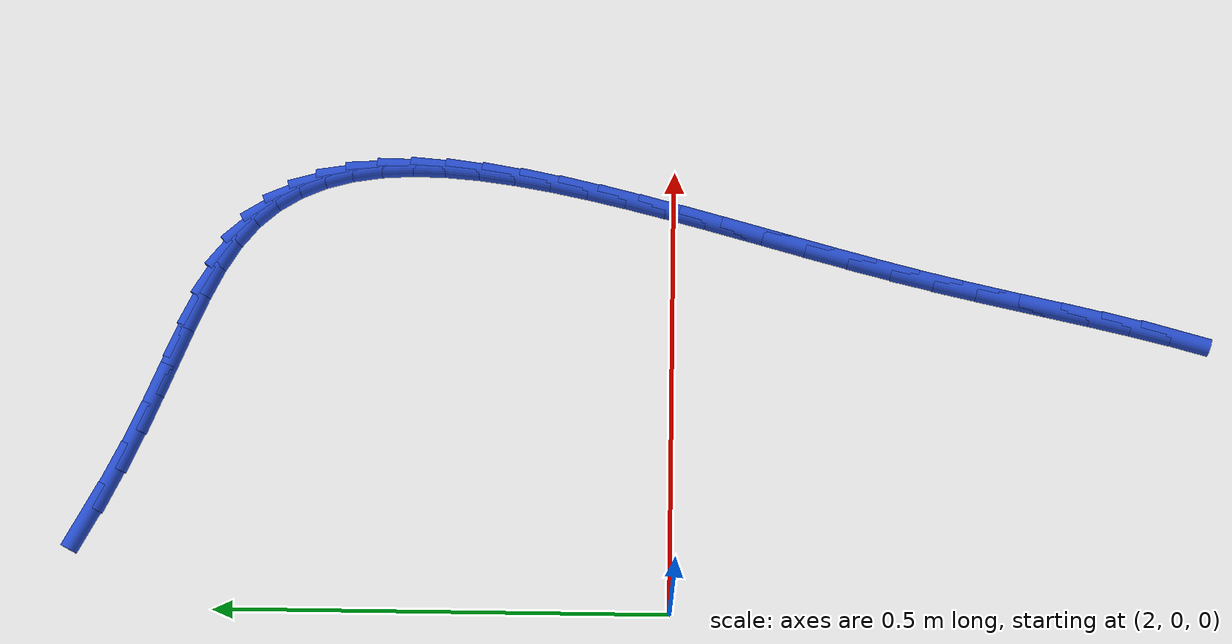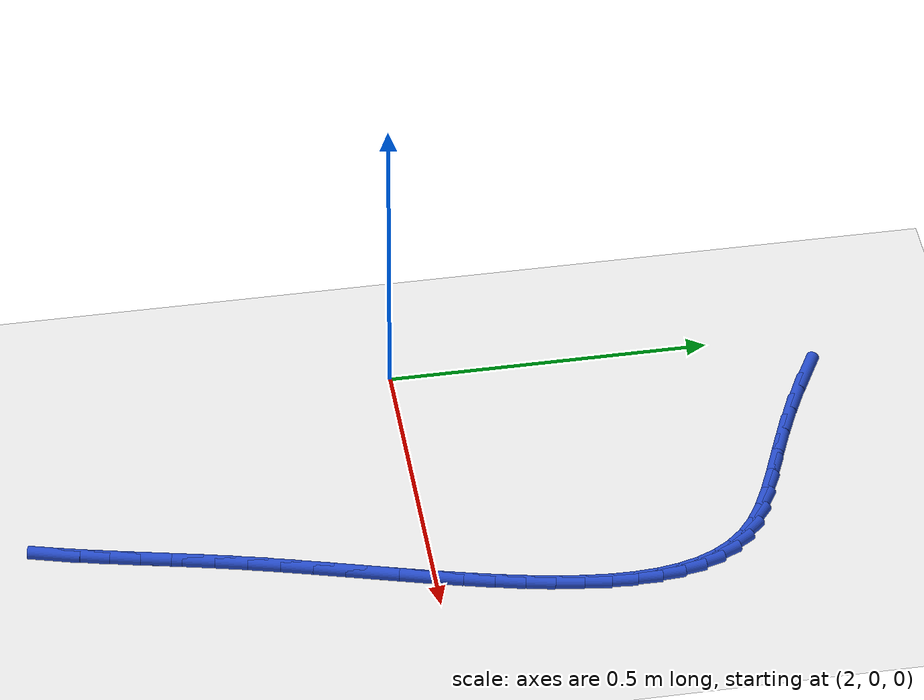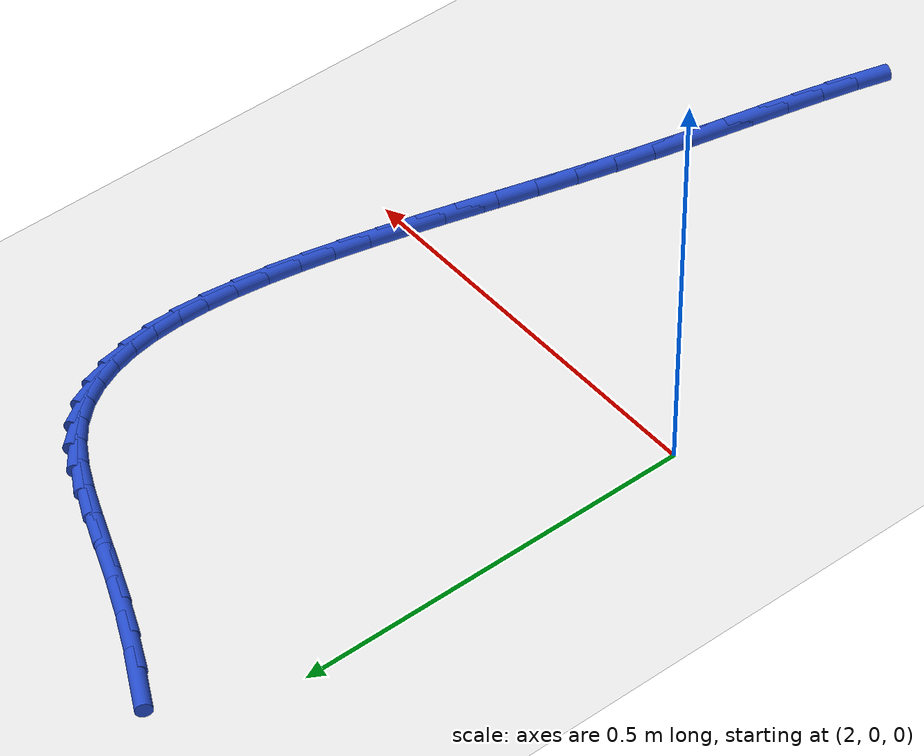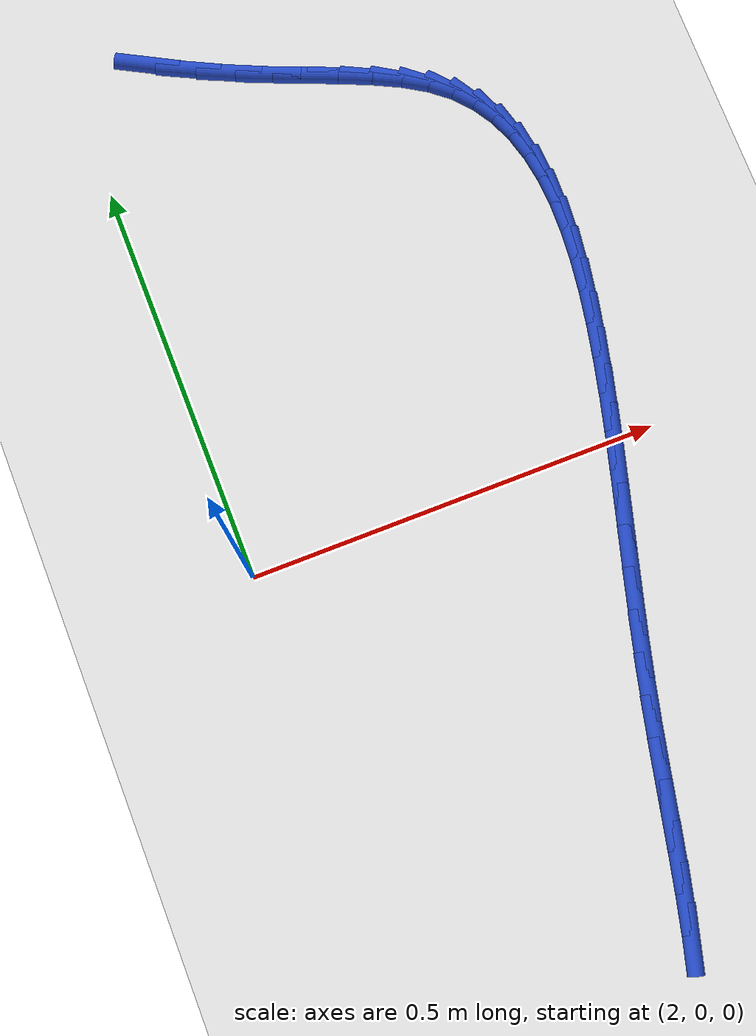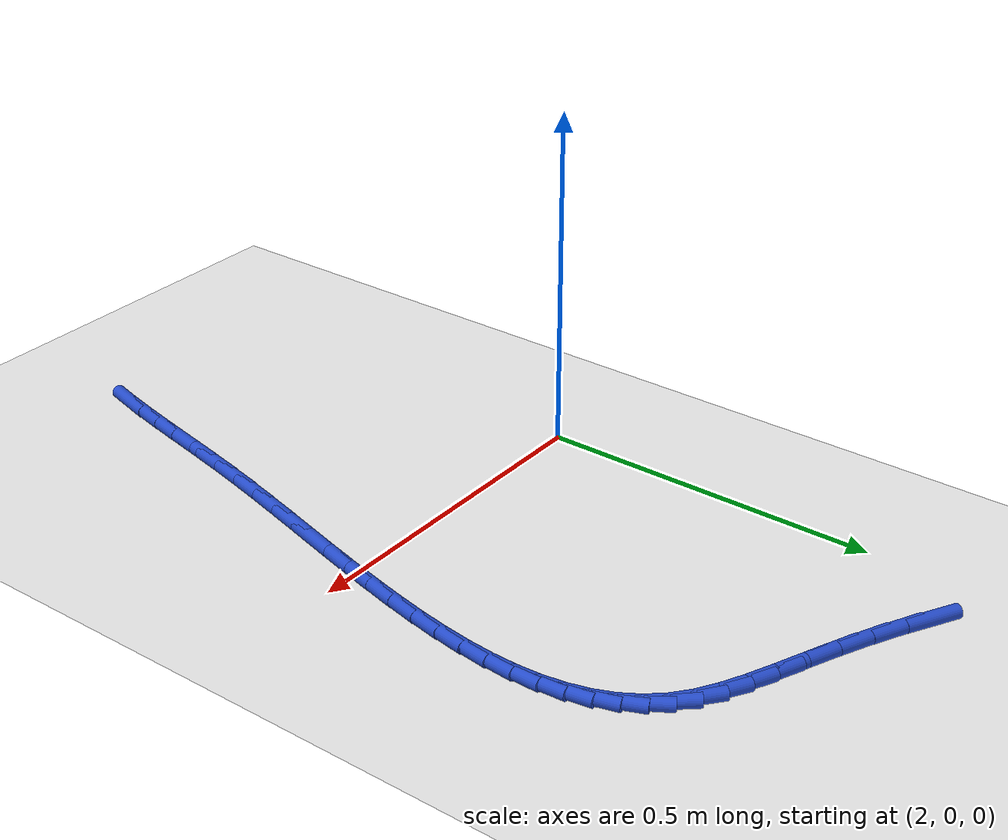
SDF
<sdf version="1.6">
 <world name="default">
  <model name="ground_plane">
   <static>1</static>
   <link name="link">
    <collision name="collision">
     <geometry><plane><normal>0 0 1</normal><size>100 100</size></plane></geometry>
     <surface><friction><ode><mu>100</mu><mu2>50</mu2></ode></friction></surface>
    </collision>
    <visual name="visual">
     <cast_shadows>0</cast_shadows>
     <geometry><plane><normal>0 0 1</normal><size>100 100</size></plane></geometry>
     <material>
      <script><uri>file://media/materials/scripts/gazebo.material</uri><name>Gazebo/WhiteGlow</name></script>
     </material>
    </visual>
   </link>
  </model>
  <model name="line">
   <link name="link_90">
    <pose>2.0980992528388556 0.6399209841957818 0.01 0 1.57 -0.4924733484986531</pose>
    <collision name="collision">
     <geometry><cylinder><radius>0.01</radius><length>0.08</length></cylinder></geometry>
    </collision>
    <visual name="visual">
     <material>
      <script><name>Gazebo/Blue</name><uri>file://media/materials/scripts/gazebo.material</uri></script>
     </material>
     <geometry><cylinder><radius>0.01</radius><length>0.08</length></cylinder></geometry>
    </visual>
   </link>
   <link name="link_91">
    <pose>2.143169569661212 0.6157376325426722 0.01 0 1.57 -0.4526784119201193</pose>
    <collision name="collision">
     <geometry><cylinder><radius>0.01</radius><length>0.08</length></cylinder></geometry>
    </collision>
    <visual name="visual">
     <material>
      <script><name>Gazebo/Blue</name><uri>file://media/materials/scripts/gazebo.material</uri></script>
     </material>
     <geometry><cylinder><radius>0.01</radius><length>0.08</length></cylinder></geometry>
    </visual>
   </link>
   <link name="link_92">
    <pose>2.188106141222339 0.5938821579544007 0.01 0 1.57 -0.4155878819843583</pose>
    <collision name="collision">
     <geometry><cylinder><radius>0.01</radius><length>0.08</length></cylinder></geometry>
    </collision>
    <visual name="visual">
     <material>
      <script><name>Gazebo/Blue</name><uri>file://media/materials/scripts/gazebo.material</uri></script>
     </material>
     <geometry><cylinder><radius>0.01</radius><length>0.08</length></cylinder></geometry>
    </visual>
   </link>
   <link name="link_93">
    <pose>2.2318185202130976 0.5745922826722613 0.01 0 1.57 -0.3892054873820127</pose>
    <collision name="collision">
     <geometry><cylinder><radius>0.01</radius><length>0.08</length></cylinder></geometry>
    </collision>
    <visual name="visual">
     <material>
      <script><name>Gazebo/Blue</name><uri>file://media/materials/scripts/gazebo.material</uri></script>
     </material>
     <geometry><cylinder><radius>0.01</radius><length>0.08</length></cylinder></geometry>
    </visual>
   </link>
   <link name="link_94">
    <pose>2.2735480842146156 0.5574778843181242 0.01 0 1.57 -0.3838199464590459</pose>
    <collision name="collision">
     <geometry><cylinder><radius>0.01</radius><length>0.08</length></cylinder></geometry>
    </collision>
    <visual name="visual">
     <material>
      <script><name>Gazebo/Blue</name><uri>file://media/materials/scripts/gazebo.material</uri></script>
     </material>
     <geometry><cylinder><radius>0.01</radius><length>0.08</length></cylinder></geometry>
    </visual>
   </link>
   <link name="link_95">
    <pose>2.3128159133128174 0.5416196164627842 0.01 0 1.57 -0.40408932229018085</pose>
    <collision name="collision">
     <geometry><cylinder><radius>0.01</radius><length>0.08</length></cylinder></geometry>
    </collision>
    <visual name="visual">
     <material>
      <script><name>Gazebo/Blue</name><uri>file://media/materials/scripts/gazebo.material</uri></script>
     </material>
     <geometry><cylinder><radius>0.01</radius><length>0.08</length></cylinder></geometry>
    </visual>
   </link>
   <link name="link_96">
    <pose>2.349151835774812 0.5260815802765144 0.01 0 1.57 -0.4560102694302764</pose>
    <collision name="collision">
     <geometry><cylinder><radius>0.01</radius><length>0.08</length></cylinder></geometry>
    </collision>
    <visual name="visual">
     <material>
      <script><name>Gazebo/Blue</name><uri>file://media/materials/scripts/gazebo.material</uri></script>
     </material>
     <geometry><cylinder><radius>0.01</radius><length>0.08</length></cylinder></geometry>
    </visual>
   </link>
   <link name="link_97">
    <pose>2.382085679867709 0.5099278769295876 0.01 0 1.57 -0.5471805058618263</pose>
    <collision name="collision">
     <geometry><cylinder><radius>0.01</radius><length>0.08</length></cylinder></geometry>
    </collision>
    <visual name="visual">
     <material>
      <script><name>Gazebo/Blue</name><uri>file://media/materials/scripts/gazebo.material</uri></script>
     </material>
     <geometry><cylinder><radius>0.01</radius><length>0.08</length></cylinder></geometry>
    </visual>
   </link>
   <link name="link_98">
    <pose>2.4111472738586155 0.49222260759227593 0.01 0 1.57 -0.6843754867167486</pose>
    <collision name="collision">
     <geometry><cylinder><radius>0.01</radius><length>0.08</length></cylinder></geometry>
    </collision>
    <visual name="visual">
     <material>
      <script><name>Gazebo/Blue</name><uri>file://media/materials/scripts/gazebo.material</uri></script>
     </material>
     <geometry><cylinder><radius>0.01</radius><length>0.08</length></cylinder></geometry>
    </visual>
   </link>
   <link name="link_99">
    <pose>2.435876884556389 0.4720451276523319 0.01 0 1.57 -0.8503345015030263</pose>
    <collision name="collision">
     <geometry><cylinder><radius>0.01</radius><length>0.08</length></cylinder></geometry>
    </collision>
    <visual name="visual">
     <material>
      <script><name>Gazebo/Blue</name><uri>file://media/materials/scripts/gazebo.material</uri></script>
     </material>
     <geometry><cylinder><radius>0.01</radius><length>0.08</length></cylinder></geometry>
    </visual>
   </link>
   <link name="link_100">
    <pose>2.4561451312508233 0.4489575484907604 0.01 0 1.57 -1.014942161393499</pose>
    <collision name="collision">
     <geometry><cylinder><radius>0.01</radius><length>0.08</length></cylinder></geometry>
    </collision>
    <visual name="visual">
     <material>
      <script><name>Gazebo/Blue</name><uri>file://media/materials/scripts/gazebo.material</uri></script>
     </material>
     <geometry><cylinder><radius>0.01</radius><length>0.08</length></cylinder></geometry>
    </visual>
   </link>
   <link name="link_101">
    <pose>2.472212609209553 0.4230918674479183 0.01 0 1.57 -1.167551977744427</pose>
    <collision name="collision">
     <geometry><cylinder><radius>0.01</radius><length>0.08</length></cylinder></geometry>
    </collision>
    <visual name="visual">
     <material>
      <script><name>Gazebo/Blue</name><uri>file://media/materials/scripts/gazebo.material</uri></script>
     </material>
     <geometry><cylinder><radius>0.01</radius><length>0.08</length></cylinder></geometry>
    </visual>
   </link>
   <link name="link_102">
    <pose>2.4843623799504715 0.39461291260582765 0.01 0 1.57 -1.3021268344948898</pose>
    <collision name="collision">
     <geometry><cylinder><radius>0.01</radius><length>0.08</length></cylinder></geometry>
    </collision>
    <visual name="visual">
     <material>
      <script><name>Gazebo/Blue</name><uri>file://media/materials/scripts/gazebo.material</uri></script>
     </material>
     <geometry><cylinder><radius>0.01</radius><length>0.08</length></cylinder></geometry>
    </visual>
   </link>
   <link name="link_103">
    <pose>2.492877504991474 0.3636855120465097 0.01 0 1.57 -1.4165545047317516</pose>
    <collision name="collision">
     <geometry><cylinder><radius>0.01</radius><length>0.08</length></cylinder></geometry>
    </collision>
    <visual name="visual">
     <material>
      <script><name>Gazebo/Blue</name><uri>file://media/materials/scripts/gazebo.material</uri></script>
     </material>
     <geometry><cylinder><radius>0.01</radius><length>0.08</length></cylinder></geometry>
    </visual>
   </link>
   <link name="link_104">
    <pose>2.4980410458504534 0.33047449385198574 0.01 0 1.57 -1.5115668012178949</pose>
    <collision name="collision">
     <geometry><cylinder><radius>0.01</radius><length>0.08</length></cylinder></geometry>
    </collision>
    <visual name="visual">
     <material>
      <script><name>Gazebo/Blue</name><uri>file://media/materials/scripts/gazebo.material</uri></script>
     </material>
     <geometry><cylinder><radius>0.01</radius><length>0.08</length></cylinder></geometry>
    </visual>
   </link>
   <link name="link_105">
    <pose>2.500136064045306 0.2951446861042771 0.01 0 1.57 1.5522798501714228</pose>
    <collision name="collision">
     <geometry><cylinder><radius>0.01</radius><length>0.08</length></cylinder></geometry>
    </collision>
    <visual name="visual">
     <material>
      <script><name>Gazebo/Blue</name><uri>file://media/materials/scripts/gazebo.material</uri></script>
     </material>
     <geometry><cylinder><radius>0.01</radius><length>0.08</length></cylinder></geometry>
    </visual>
   </link>
   <link name="link_106">
    <pose>2.499445621093924 0.2578609168854044 0.01 0 1.57 1.4892624724920558</pose>
    <collision name="collision">
     <geometry><cylinder><radius>0.01</radius><length>0.08</length></cylinder></geometry>
    </collision>
    <visual name="visual">
     <material>
      <script><name>Gazebo/Blue</name><uri>file://media/materials/scripts/gazebo.material</uri></script>
     </material>
     <geometry><cylinder><radius>0.01</radius><length>0.08</length></cylinder></geometry>
    </visual>
   </link>
   <link name="link_107">
    <pose>2.496252778514203 0.21878801427739084 0.01 0 1.57 1.4385855500745994</pose>
    <collision name="collision">
     <geometry><cylinder><radius>0.01</radius><length>0.08</length></cylinder></geometry>
    </collision>
    <visual name="visual">
     <material>
      <script><name>Gazebo/Blue</name><uri>file://media/materials/scripts/gazebo.material</uri></script>
     </material>
     <geometry><cylinder><radius>0.01</radius><length>0.08</length></cylinder></geometry>
    </visual>
   </link>
   <link name="link_108">
    <pose>2.490840597824038 0.17809080636225694 0.01 0 1.57 1.3982173462473546</pose>
    <collision name="collision">
     <geometry><cylinder><radius>0.01</radius><length>0.08</length></cylinder></geometry>
    </collision>
    <visual name="visual">
     <material>
      <script><name>Gazebo/Blue</name><uri>file://media/materials/scripts/gazebo.material</uri></script>
     </material>
     <geometry><cylinder><radius>0.01</radius><length>0.08</length></cylinder></geometry>
    </visual>
   </link>
   <link name="link_109">
    <pose>2.4834921405413217 0.13593412122202408 0.01 0 1.57 1.3665192398392874</pose>
    <collision name="collision">
     <geometry><cylinder><radius>0.01</radius><length>0.08</length></cylinder></geometry>
    </collision>
    <visual name="visual">
     <material>
      <script><name>Gazebo/Blue</name><uri>file://media/materials/scripts/gazebo.material</uri></script>
     </material>
     <geometry><cylinder><radius>0.01</radius><length>0.08</length></cylinder></geometry>
    </visual>
   </link>
   <link name="link_110">
    <pose>2.4744904681839497 0.0924827869387137 0.01 0 1.57 1.3422121138065894</pose>
    <collision name="collision">
     <geometry><cylinder><radius>0.01</radius><length>0.08</length></cylinder></geometry>
    </collision>
    <visual name="visual">
     <material>
      <script><name>Gazebo/Blue</name><uri>file://media/materials/scripts/gazebo.material</uri></script>
     </material>
     <geometry><cylinder><radius>0.01</radius><length>0.08</length></cylinder></geometry>
    </visual>
   </link>
   <link name="link_111">
    <pose>2.4641186422698156 0.04790163159434724 0.01 0 1.57 1.3243225282462223</pose>
    <collision name="collision">
     <geometry><cylinder><radius>0.01</radius><length>0.08</length></cylinder></geometry>
    </collision>
    <visual name="visual">
     <material>
      <script><name>Gazebo/Blue</name><uri>file://media/materials/scripts/gazebo.material</uri></script>
     </material>
     <geometry><cylinder><radius>0.01</radius><length>0.08</length></cylinder></geometry>
    </visual>
   </link>
   <link name="link_112">
    <pose>2.452659724316814 0.0023554832709450635 0.01 0 1.57 1.3121301537417218</pose>
    <collision name="collision">
     <geometry><cylinder><radius>0.01</radius><length>0.08</length></cylinder></geometry>
    </collision>
    <visual name="visual">
     <material>
      <script><name>Gazebo/Blue</name><uri>file://media/materials/scripts/gazebo.material</uri></script>
     </material>
     <geometry><cylinder><radius>0.01</radius><length>0.08</length></cylinder></geometry>
    </visual>
   </link>
   <link name="link_113">
    <pose>2.4403967758428395 -0.04399082994946939 0.01 0 1.57 1.3051240450562167</pose>
    <collision name="collision">
     <geometry><cylinder><radius>0.01</radius><length>0.08</length></cylinder></geometry>
    </collision>
    <visual name="visual">
     <material>
      <script><name>Gazebo/Blue</name><uri>file://media/materials/scripts/gazebo.material</uri></script>
     </material>
     <geometry><cylinder><radius>0.01</radius><length>0.08</length></cylinder></geometry>
    </visual>
   </link>
   <link name="link_114">
    <pose>2.427612858365786 -0.09097247998487566 0.01 0 1.57 1.3029693475583057</pose>
    <collision name="collision">
     <geometry><cylinder><radius>0.01</radius><length>0.08</length></cylinder></geometry>
    </collision>
    <visual name="visual">
     <material>
      <script><name>Gazebo/Blue</name><uri>file://media/materials/scripts/gazebo.material</uri></script>
     </material>
     <geometry><cylinder><radius>0.01</radius><length>0.08</length></cylinder></geometry>
    </visual>
   </link>
   <link name="link_115">
    <pose>2.414591033403548 -0.13842463875325242 0.01 0 1.57 1.3054837949030171</pose>
    <collision name="collision">
     <geometry><cylinder><radius>0.01</radius><length>0.08</length></cylinder></geometry>
    </collision>
    <visual name="visual">
     <material>
      <script><name>Gazebo/Blue</name><uri>file://media/materials/scripts/gazebo.material</uri></script>
     </material>
     <geometry><cylinder><radius>0.01</radius><length>0.08</length></cylinder></geometry>
    </visual>
   </link>
   <link name="link_116">
    <pose>2.4016143624740205 -0.18618247817257821 0.01 0 1.57 1.3126227430778583</pose>
    <collision name="collision">
     <geometry><cylinder><radius>0.01</radius><length>0.08</length></cylinder></geometry>
    </collision>
    <visual name="visual">
     <material>
      <script><name>Gazebo/Blue</name><uri>file://media/materials/scripts/gazebo.material</uri></script>
     </material>
     <geometry><cylinder><radius>0.01</radius><length>0.08</length></cylinder></geometry>
    </visual>
   </link>
   <link name="link_117">
    <pose>2.3889659070950975 -0.23408117016083158 0.01 0 1.57 1.3244714814618732</pose>
    <collision name="collision">
     <geometry><cylinder><radius>0.01</radius><length>0.08</length></cylinder></geometry>
    </collision>
    <visual name="visual">
     <material>
      <script><name>Gazebo/Blue</name><uri>file://media/materials/scripts/gazebo.material</uri></script>
     </material>
     <geometry><cylinder><radius>0.01</radius><length>0.08</length></cylinder></geometry>
    </visual>
   </link>
   <link name="link_118">
    <pose>2.376928728784672 -0.28195588663599125 0.01 0 1.57 1.3403698245807163</pose>
    <collision name="collision">
     <geometry><cylinder><radius>0.01</radius><length>0.08</length></cylinder></geometry>
    </collision>
    <visual name="visual">
     <material>
      <script><name>Gazebo/Blue</name><uri>file://media/materials/scripts/gazebo.material</uri></script>
     </material>
     <geometry><cylinder><radius>0.01</radius><length>0.08</length></cylinder></geometry>
    </visual>
   </link>
   <link name="link_119">
    <pose>2.365742984162356 -0.3296373209220453 0.01 0 1.57 1.353156211285501</pose>
    <collision name="collision">
     <geometry><cylinder><radius>0.01</radius><length>0.08</length></cylinder></geometry>
    </collision>
    <visual name="visual">
     <material>
      <script><name>Gazebo/Blue</name><uri>file://media/materials/scripts/gazebo.material</uri></script>
     </material>
     <geometry><cylinder><radius>0.01</radius><length>0.08</length></cylinder></geometry>
    </visual>
   </link>
   <link name="link_120">
    <pose>2.355287110550781 -0.37691840855925657 0.01 0 1.57 1.3590572034542256</pose>
    <collision name="collision">
     <geometry><cylinder><radius>0.01</radius><length>0.08</length></cylinder></geometry>
    </collision>
    <visual name="visual">
     <material>
      <script><name>Gazebo/Blue</name><uri>file://media/materials/scripts/gazebo.material</uri></script>
     </material>
     <geometry><cylinder><radius>0.01</radius><length>0.08</length></cylinder></geometry>
    </visual>
   </link>
   <link name="link_121">
    <pose>2.345258148900534 -0.4235731501705647 0.01 0 1.57 1.3577916729332347</pose>
    <collision name="collision">
     <geometry><cylinder><radius>0.01</radius><length>0.08</length></cylinder></geometry>
    </collision>
    <visual name="visual">
     <material>
      <script><name>Gazebo/Blue</name><uri>file://media/materials/scripts/gazebo.material</uri></script>
     </material>
     <geometry><cylinder><radius>0.01</radius><length>0.08</length></cylinder></geometry>
    </visual>
   </link>
   <link name="link_122">
    <pose>2.335351779895444 -0.46937540438853453 0.01 0 1.57 1.3489439382563684</pose>
    <collision name="collision">
     <geometry><cylinder><radius>0.01</radius><length>0.08</length></cylinder></geometry>
    </collision>
    <visual name="visual">
     <material>
      <script><name>Gazebo/Blue</name><uri>file://media/materials/scripts/gazebo.material</uri></script>
     </material>
     <geometry><cylinder><radius>0.01</radius><length>0.08</length></cylinder></geometry>
    </visual>
   </link>
   <link name="link_123">
    <pose>2.3252636842193413 -0.5140990298457315 0.01 0 1.57 1.3319087217868149</pose>
    <collision name="collision">
     <geometry><cylinder><radius>0.01</radius><length>0.08</length></cylinder></geometry>
    </collision>
    <visual name="visual">
     <material>
      <script><name>Gazebo/Blue</name><uri>file://media/materials/scripts/gazebo.material</uri></script>
     </material>
     <geometry><cylinder><radius>0.01</radius><length>0.08</length></cylinder></geometry>
    </visual>
   </link>
   <link name="link_124">
    <pose>2.3146895425560543 -0.5575178851747205 0.01 0 1.57 1.3058663753925022</pose>
    <collision name="collision">
     <geometry><cylinder><radius>0.01</radius><length>0.08</length></cylinder></geometry>
    </collision>
    <visual name="visual">
     <material>
      <script><name>Gazebo/Blue</name><uri>file://media/materials/scripts/gazebo.material</uri></script>
     </material>
     <geometry><cylinder><radius>0.01</radius><length>0.08</length></cylinder></geometry>
    </visual>
   </link>
  </model>
 </world>
</sdf>
